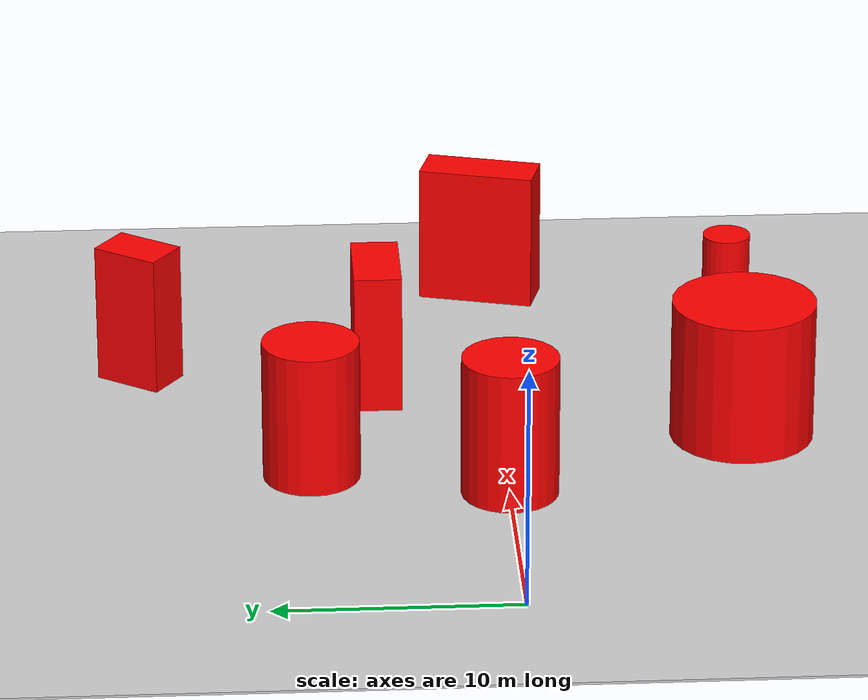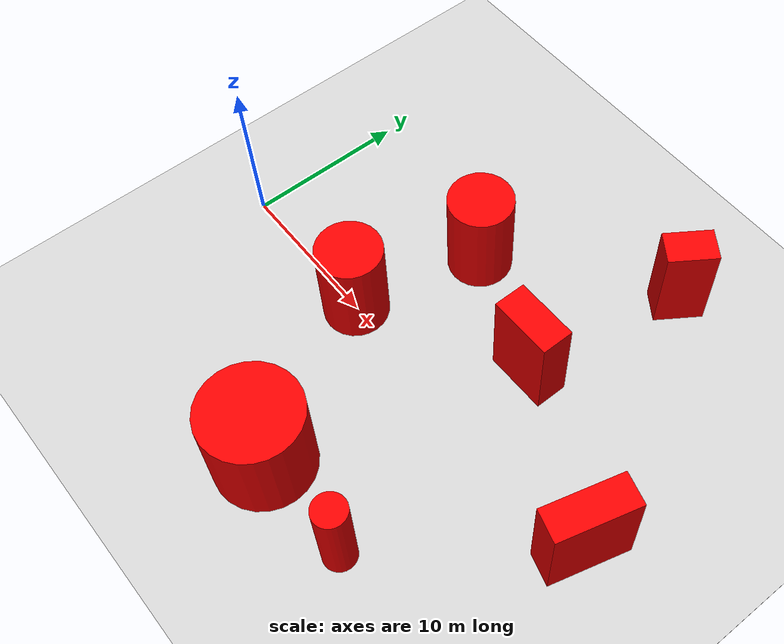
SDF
<?xml version="1.0" encoding="UTF-8"?>
<sdf version="1.9">
  <world name="map">
    <physics name="1ms" type="ignored">
      <max_step_size>0.001</max_step_size>
      <real_time_factor>1.0</real_time_factor>
    </physics>

    <plugin filename="libgz-sim-physics-system.so" name="gz::sim::systems::Physics"/>
    <plugin filename="libgz-sim-sensors-system.so" name="gz::sim::systems::Sensors">
      <render_engine>ogre2</render_engine>
    </plugin>
    <plugin filename="libgz-sim-contact-system" name="gz::sim::systems::Contact"/>
    <plugin filename="libgz-sim-imu-system" name="gz::sim::systems::Imu"/>
    <plugin filename="libgz-sim-scene-broadcaster-system.so" name="gz::sim::systems::SceneBroadcaster"/>
    <plugin filename="libgz-sim-user-commands-system.so" name="gz::sim::systems::UserCommands"/>

    <gravity>0 0 -9.8</gravity>
    <magnetic_field>6e-06 2.3e-05 -4.2e-05</magnetic_field>
    <atmosphere type="adiabatic"/>
    <scene>
      <grid>false</grid>
      <ambient>0.4 0.4 0.4 1</ambient>
      <background>0.7 0.7 0.7 1</background>
      <shadows>true</shadows>
    </scene>
    <model name="ground_plane">
      <static>true</static>
      <link name="link">
        <pose>0 0 -0.05 0 0 0</pose>
        <collision name="collision">
          <geometry>
            <box>
              <size>500 500 0.1</size>
            </box>
          </geometry>
        </collision>
        <visual name="visual">
          <geometry>
            <box>
              <size>500 500 0.1</size>
            </box>
          </geometry>
          <material>
            <ambient>0.8 0.8 0.8 1</ambient>
            <diffuse>0.8 0.8 0.8 1</diffuse>
            <specular>0.8 0.8 0.8 1</specular>
          </material>
        </visual>
        <enable_wind>false</enable_wind>
      </link>
      <pose>0 0 0 0 -0 0</pose>
      <self_collide>false</self_collide>
    </model>
    <light name="sunUTC" type="directional">
      <pose>0 0 500 0 -0 0</pose>
      <cast_shadows>true</cast_shadows>
      <intensity>1</intensity>
      <direction>0.001 0.625 -0.78</direction>
      <diffuse>0.904 0.904 0.904 1</diffuse>
      <specular>0.271 0.271 0.271 1</specular>
      <attenuation>
        <range>2000</range>
        <linear>0</linear>
        <constant>1</constant>
        <quadratic>0</quadratic>
      </attenuation>
      <spot>
        <inner_angle>0</inner_angle>
        <outer_angle>0</outer_angle>
        <falloff>0</falloff>
      </spot>
    </light>
    <spherical_coordinates>
      <surface_model>EARTH_WGS84</surface_model>
      <world_frame_orientation>ENU</world_frame_orientation>
      <latitude_deg>50.823469</latitude_deg>
      <longitude_deg>4.394371</longitude_deg>
      <elevation>0</elevation>
    </spherical_coordinates>

    <model name="cylinder_1">
      <static>true</static>
      <pose>10 0 3 0 0 0</pose>
      <link name="link">
        <collision name="collision">
          <geometry>
            <cylinder>
              <radius>2</radius>
              <length>6.0</length>
            </cylinder>
          </geometry>
        </collision>
        <visual name="visual">
          <geometry>
            <cylinder>
              <radius>2</radius>
              <length>6.0</length>
            </cylinder>
          </geometry>
          <material>
            <ambient>1 0 0 1</ambient>
            <diffuse>1 0 0 1</diffuse>
          </material>
        </visual>
      </link>
    </model>

    <model name="cylinder_2">
      <static>true</static>
      <pose>12 8 3 0 0 0</pose>
      <link name="link">
        <collision name="collision">
          <geometry>
            <cylinder>
              <radius>2</radius>
              <length>6.0</length>
            </cylinder>
          </geometry>
        </collision>
        <visual name="visual">
          <geometry>
            <cylinder>
              <radius>2</radius>
              <length>6.0</length>
            </cylinder>
          </geometry>
          <material>
            <ambient>1 0 0 1</ambient>
            <diffuse>1 0 0 1</diffuse>
          </material>
        </visual>
      </link>
    </model>

    <model name="cylinder_3">
      <static>true</static>
      <pose>15 -10 3 0 0 0</pose>
      <link name="link">
        <collision name="collision">
          <geometry>
            <cylinder>
              <radius>3</radius>
              <length>6.0</length>
            </cylinder>
          </geometry>
        </collision>
        <visual name="visual">
          <geometry>
            <cylinder>
              <radius>3</radius>
              <length>6.0</length>
            </cylinder>
          </geometry>
          <material>
            <ambient>1 0 0 1</ambient>
            <diffuse>1 0 0 1</diffuse>
          </material>
        </visual>
      </link>
    </model>

    <model name="cylinder_4">
      <static>true</static>
      <pose>22 -10 3 0 0 0</pose>
      <link name="link">
        <collision name="collision">
          <geometry>
            <cylinder>
              <radius>1</radius>
              <length>6.0</length>
            </cylinder>
          </geometry>
        </collision>
        <visual name="visual">
          <geometry>
            <cylinder>
              <radius>1</radius>
              <length>6.0</length>
            </cylinder>
          </geometry>
          <material>
            <ambient>1 0 0 1</ambient>
            <diffuse>1 0 0 1</diffuse>
          </material>
        </visual>
      </link>
    </model>

    <model name="box_1">
      <static>true</static>
      <pose>20 5 3 0 0 0</pose>
      <link name="link">
        <collision name="collision">
          <geometry>
            <box>
              <size>4 2 6</size>
            </box>
          </geometry>
        </collision>
        <visual name="visual">
          <geometry>
            <box>
              <size>4 2 6</size>
            </box>
          </geometry>
          <material>
            <ambient>1 0 0 1</ambient>
            <diffuse>1 0 0 1</diffuse>
          </material>
        </visual>
      </link>
    </model>

    <model name="box_2">
      <static>true</static>
      <pose>30 0 3 0 0 1.3</pose>
      <link name="link">
        <collision name="collision">
          <geometry>
            <box>
              <size>5 2 6</size>
            </box>
          </geometry>
        </collision>
        <visual name="visual">
          <geometry>
            <box>
              <size>5 2 6</size>
            </box>
          </geometry>
          <material>
            <ambient>1 0 0 1</ambient>
            <diffuse>1 0 0 1</diffuse>
          </material>
        </visual>
      </link>
    </model>

    <model name="box_3">
      <static>true</static>
      <pose>22 15 3 0 0 -0.6</pose>
      <link name="link">
        <collision name="collision">
          <geometry>
            <box>
              <size>2 3 6</size>
            </box>
          </geometry>
        </collision>
        <visual name="visual">
          <geometry>
            <box>
              <size>2 3 6</size>
            </box>
          </geometry>
          <material>
            <ambient>1 0 0 1</ambient>
            <diffuse>1 0 0 1</diffuse>
          </material>
        </visual>
      </link>
    </model>
  </world>
</sdf>
